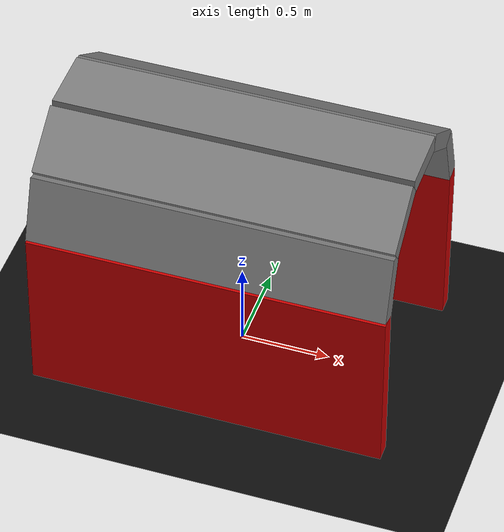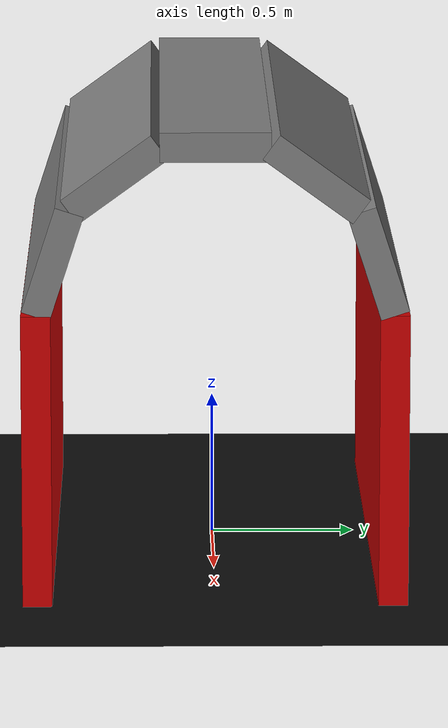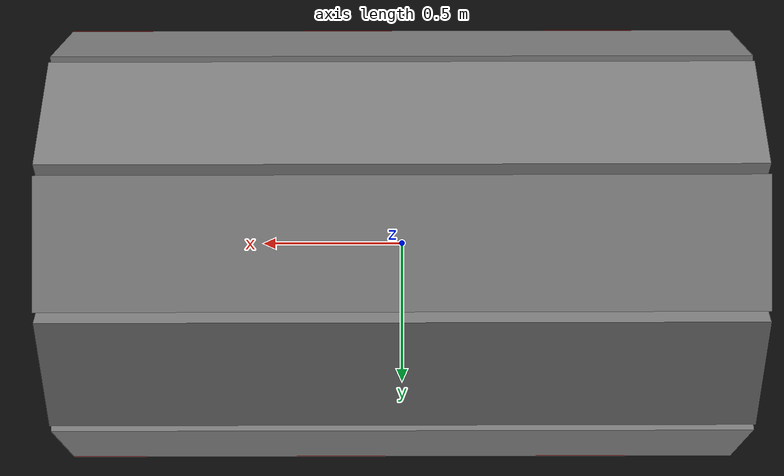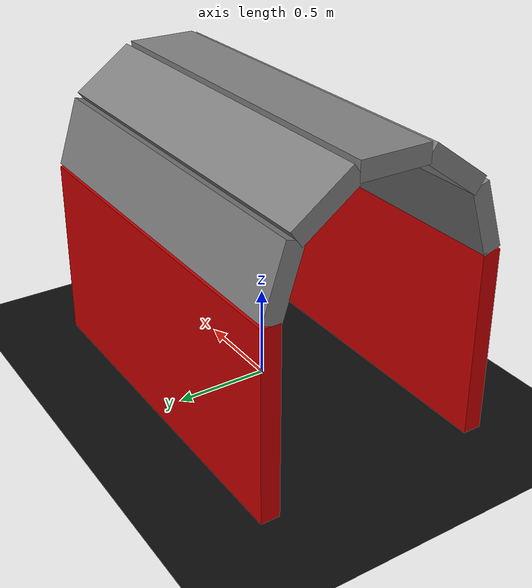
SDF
<sdf version="1.7">
 <world name="narrow_gap">
  <plugin filename="libignition-gazebo-physics-system.so" name="ignition::gazebo::systems::Physics"/>
  <plugin filename="libignition-gazebo-user-commands-system.so" name="ignition::gazebo::systems::UserCommands"/>
  <plugin filename="libignition-gazebo-scene-broadcaster-system.so" name="ignition::gazebo::systems::SceneBroadcaster"/>
  <plugin filename="libignition-gazebo-sensors-system.so" name="ignition::gazebo::systems::Sensors">
   <render_engine>ogre2</render_engine>
  </plugin>
  <physics name="1ms" type="ignored">
   <max_step_size>0.001</max_step_size>
   <real_time_factor>1.0</real_time_factor>
  </physics>
  <light name="sun_light" type="directional">
   <pose>0 0 10 0 0 0</pose>
   <diffuse>1 1 1 1</diffuse>
   <specular>0.2 0.2 0.2 1</specular>
   <direction>-0.5 0.5 -1</direction>
  </light>
  <model name="ground">
   <static>true</static>
   <link name="ground_link">
    <collision name="collision">
     <geometry><plane><normal>0 0 1</normal><size>50 50</size></plane></geometry>
    </collision>
    <visual name="visual">
     <geometry><plane><normal>0 0 1</normal><size>50 50</size></plane></geometry>
     <material>
      <ambient>0.05 0.05 0.05 1</ambient>
      <diffuse>0.05 0.05 0.05 1</diffuse>
      <specular>0.01 0.01 0.01 1</specular>
     </material>
    </visual>
   </link>
  </model>
  <model name="left_wall">
   <static>true</static>
   <pose>0 0.6 0.5 0 0 0</pose>
   <link name="link">
    <collision name="collision"><geometry><box><size>2 0.1 1</size></box></geometry></collision>
    <visual name="visual">
     <geometry><box><size>2 0.1 1</size></box></geometry>
     <material>
      <ambient>0.8 0.0 0.0 1</ambient>
      <diffuse>0.8 0.0 0.0 1</diffuse>
      <specular>0.2 0.2 0.2 1</specular>
     </material>
    </visual>
   </link>
  </model>
  <model name="right_wall">
   <static>true</static>
   <pose>0 -0.6 0.5 0 0 0</pose>
   <link name="link">
    <collision name="collision"><geometry><box><size>2 0.1 1</size></box></geometry></collision>
    <visual name="visual">
     <geometry><box><size>2 0.1 1</size></box></geometry>
     <material>
      <ambient>0.8 0.0 0.0 1</ambient>
      <diffuse>0.8 0.0 0.0 1</diffuse>
      <specular>0.2 0.2 0.2 1</specular>
     </material>
    </visual>
   </link>
  </model>
  <model name="arch_segment_1">
   <static>true</static>
   <pose>0 0.5427 1.1763 1.88496 0 0</pose>
   <link name="link">
    <collision name="collision"><geometry><box><size>2 0.37082 0.1</size></box></geometry></collision>
    <visual name="visual">
     <geometry><box><size>2 0.37082 0.1</size></box></geometry>
     <material>
      <ambient>0.5 0.5 0.5 1</ambient>
      <diffuse>0.5 0.5 0.5 1</diffuse>
      <specular>0.2 0.2 0.2 1</specular>
     </material>
    </visual>
   </link>
  </model>
  <model name="arch_segment_2">
   <static>true</static>
   <pose>0 0.3354 1.4616 2.51327 0 0</pose>
   <link name="link">
    <collision name="collision"><geometry><box><size>2 0.37082 0.1</size></box></geometry></collision>
    <visual name="visual">
     <geometry><box><size>2 0.37082 0.1</size></box></geometry>
     <material>
      <ambient>0.5 0.5 0.5 1</ambient>
      <diffuse>0.5 0.5 0.5 1</diffuse>
      <specular>0.2 0.2 0.2 1</specular>
     </material>
    </visual>
   </link>
  </model>
  <model name="arch_segment_3">
   <static>true</static>
   <pose>0 0 1.5706 0 0 0</pose>
   <link name="link">
    <collision name="collision"><geometry><box><size>2 0.37082 0.1</size></box></geometry></collision>
    <visual name="visual">
     <geometry><box><size>2 0.37082 0.1</size></box></geometry>
     <material>
      <ambient>0.5 0.5 0.5 1</ambient>
      <diffuse>0.5 0.5 0.5 1</diffuse>
      <specular>0.2 0.2 0.2 1</specular>
     </material>
    </visual>
   </link>
  </model>
  <model name="arch_segment_4">
   <static>true</static>
   <pose>0 -0.3354 1.4616 -2.51327 0 0</pose>
   <link name="link">
    <collision name="collision"><geometry><box><size>2 0.37082 0.1</size></box></geometry></collision>
    <visual name="visual">
     <geometry><box><size>2 0.37082 0.1</size></box></geometry>
     <material>
      <ambient>0.5 0.5 0.5 1</ambient>
      <diffuse>0.5 0.5 0.5 1</diffuse>
      <specular>0.2 0.2 0.2 1</specular>
     </material>
    </visual>
   </link>
  </model>
  <model name="arch_segment_5">
   <static>true</static>
   <pose>0 -0.5427 1.1763 -1.88496 0 0</pose>
   <link name="link">
    <collision name="collision"><geometry><box><size>2 0.37082 0.1</size></box></geometry></collision>
    <visual name="visual">
     <geometry><box><size>2 0.37082 0.1</size></box></geometry>
     <material>
      <ambient>0.5 0.5 0.5 1</ambient>
      <diffuse>0.5 0.5 0.5 1</diffuse>
      <specular>0.2 0.2 0.2 1</specular>
     </material>
    </visual>
   </link>
  </model>
 </world>
</sdf>
